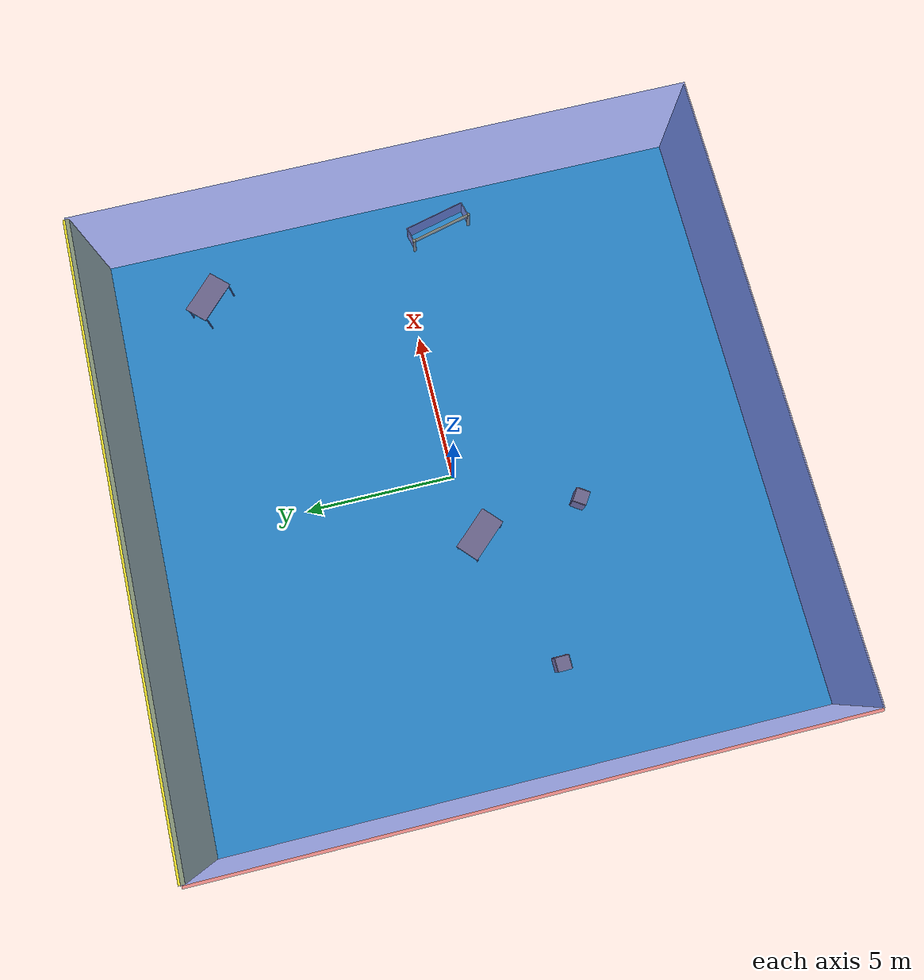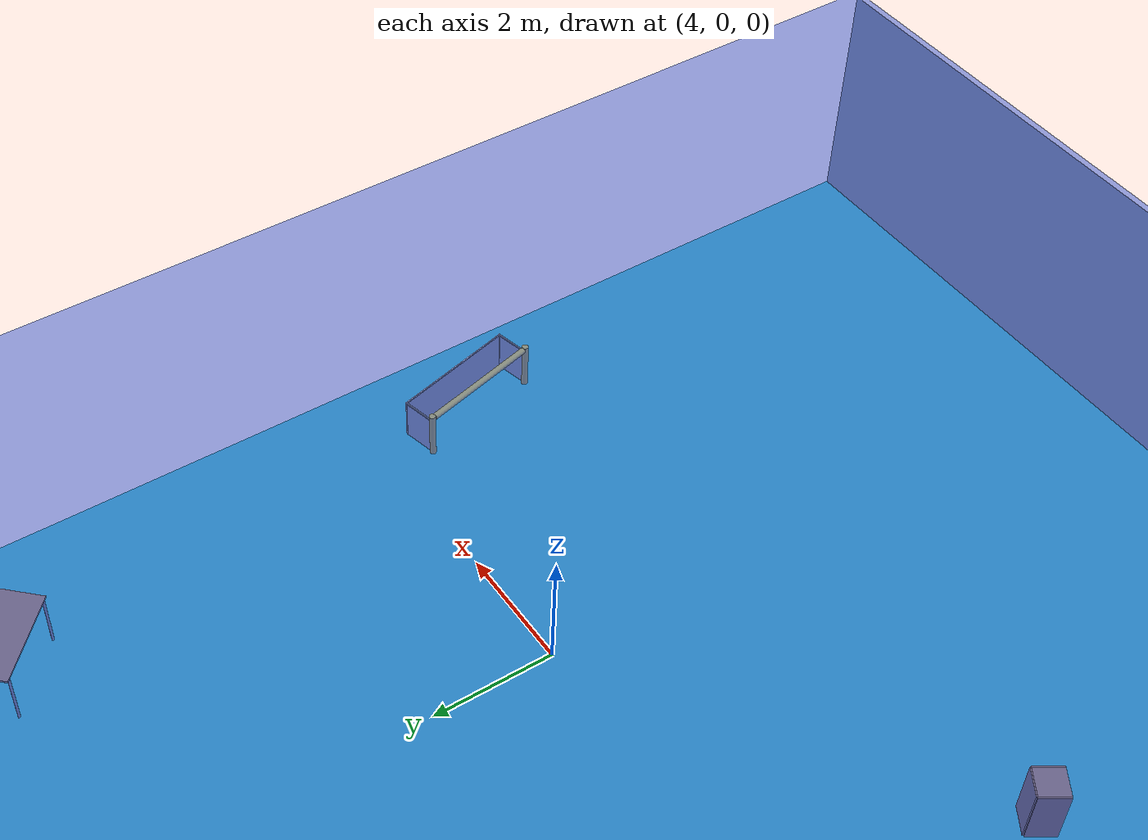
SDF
<sdf version="1.4">
 <world name="default">
  <physics type="ode">
   <max_step_size>0.001</max_step_size>
   <real_time_factor>1</real_time_factor>
   <real_time_update_rate>1000</real_time_update_rate>
   <gravity>0 0 -9.8</gravity>
  </physics>
  <scene><ambient>0.4 0.4 0.4 1</ambient><background>0.7 0.7 0.7 1</background><shadows>1</shadows></scene>
  <model name="Surrounding">
   <static>1</static>
   <link name="Ceiling">
    <collision name="Ceiling_Collision"><geometry><box><size>20 20 0.1</size></box></geometry></collision>
    <visual name="Ceiling_Visual">
     <geometry><box><size>20 20 0.1</size></box></geometry>
     <material>
      <script><uri>file://media/materials/scripts/gazebo.material</uri><name>Gazebo/BlueTransparent</name></script>
     </material>
    </visual>
    <pose>0 0 4.05 0 0 0</pose>
   </link>
   <link name="Wall_South">
    <collision name="Wall_South_Collision">
     <geometry><box><size>20 0 4</size></box></geometry>
     <pose>0 0 2 0 -0 0</pose>
    </collision>
    <visual name="Wall_South_Visual">
     <pose>0 0 2 0 -0 0</pose>
     <geometry><box><size>20 0 4</size></box></geometry>
     <material>
      <script><uri>file://media/materials/scripts/gazebo.material</uri><name>Gazebo/PioneerBody</name></script>
     </material>
    </visual>
    <velocity_decay><linear>0</linear><angular>0</angular></velocity_decay>
    <pose>0 -10 0 0 -0 0</pose>
   </link>
   <link name="Wall_East">
    <collision name="Wall_21_Collision">
     <geometry><box><size>20 0 4</size></box></geometry>
     <pose>0 0 2 0 -0 0</pose>
    </collision>
    <visual name="Wall_21_Visual">
     <pose>0 0 2 0 -0 0</pose>
     <geometry><box><size>20 0 4</size></box></geometry>
     <material>
      <script><uri>file://media/materials/scripts/gazebo.material</uri><name>Gazebo/BlueTransparent</name></script>
     </material>
    </visual>
    <velocity_decay><linear>0</linear><angular>0</angular></velocity_decay>
    <pose>10 0 0 0 -0 1.5708</pose>
   </link>
   <link name="Wall_North">
    <collision name="Wall_22_Collision">
     <geometry><box><size>20 0.2 4</size></box></geometry>
     <pose>0 0 2 0 -0 0</pose>
    </collision>
    <visual name="Wall_22_Visual">
     <pose>0 0 2 0 -0 0</pose>
     <geometry><box><size>20 0.2 4</size></box></geometry>
     <material>
      <script><uri>file://media/materials/scripts/gazebo.material</uri><name>Gazebo/YellowGlow</name></script>
     </material>
    </visual>
    <velocity_decay><linear>0</linear><angular>0</angular></velocity_decay>
    <pose>0 10 0 0 -0 0</pose>
   </link>
   <link name="Wall_West">
    <collision name="Wall_23_Collision">
     <geometry><box><size>20 0.2 4</size></box></geometry>
     <pose>0 0 2 0 -0 0</pose>
    </collision>
    <visual name="Wall_23_Visual">
     <pose>0 0 2 0 -0 0</pose>
     <geometry><box><size>20 0.2 4</size></box></geometry>
     <material>
      <script><uri>file://media/materials/scripts/gazebo.material</uri><name>Gazebo/RedTransparent</name></script>
     </material>
    </visual>
    <velocity_decay><linear>0</linear><angular>0</angular></velocity_decay>
    <pose>-10 0 0 0 0 -1.5708</pose>
   </link>
   <link name="Ground_link">
    <collision name="collision">
     <pose>0 0 .05 0 -0 0</pose>
     <geometry><box><size>20 20 0.1</size></box></geometry>
    </collision>
    <visual name="visual">
     <pose>0 0 .05 0 -0 0</pose>
     <geometry><box><size>20 20 0.1</size></box></geometry>
     <material>
      <script><uri>file://media/materials/scripts/gazebo.material</uri><name>Gazebo/Turquoise</name></script>
     </material>
    </visual>
   </link>
   <static>1</static>
  </model>
  <spherical_coordinates>
   <surface_model>EARTH_WGS84</surface_model>
   <latitude_deg>0</latitude_deg>
   <longitude_deg>0</longitude_deg>
   <elevation>0</elevation>
   <heading_deg>0</heading_deg>
  </spherical_coordinates>
  <light name="lightball_0" type="diffuse">
   <diffuse>0.8 0.8 0.8 1</diffuse>
   <specular>0.2 0.2 0.2 1</specular>
   <attenuation>
    <range>100</range>
    <constant>0.7</constant>
    <linear>0.01</linear>
    <quadratic>0.001</quadratic>
   </attenuation>
   <direction>-0.5 0.1 -0.9</direction>
   <pose>-5.75666271004 3.98206389139 1.12959277904 0 0 0</pose>
  </light>
  <light name="lightball_1" type="diffuse">
   <diffuse>0.8 0.8 0.8 1</diffuse>
   <specular>0.2 0.2 0.2 1</specular>
   <attenuation>
    <range>100</range>
    <constant>0.7</constant>
    <linear>0.01</linear>
    <quadratic>0.001</quadratic>
   </attenuation>
   <direction>-0.5 0.1 -0.9</direction>
   <pose>-5.14357578965 -4.06947363333 1.62275441082 0 0 0</pose>
  </light>
  <light name="lightball_2" type="diffuse">
   <diffuse>0.8 0.8 0.8 1</diffuse>
   <specular>0.2 0.2 0.2 1</specular>
   <attenuation>
    <range>100</range>
    <constant>0.7</constant>
    <linear>0.01</linear>
    <quadratic>0.001</quadratic>
   </attenuation>
   <direction>-0.5 0.1 -0.9</direction>
   <pose>0.727749837806 -6.46800354845 3.72953771681 0 0 0</pose>
  </light>
  <light name="lightball_3" type="diffuse">
   <diffuse>0.8 0.8 0.8 1</diffuse>
   <specular>0.2 0.2 0.2 1</specular>
   <attenuation>
    <range>100</range>
    <constant>0.7</constant>
    <linear>0.01</linear>
    <quadratic>0.001</quadratic>
   </attenuation>
   <direction>-0.5 0.1 -0.9</direction>
   <pose>6.95230010195 -1.12400179061 1.51552410463 0 0 0</pose>
  </light>
  <light name="lightball_4" type="diffuse">
   <diffuse>0.8 0.8 0.8 1</diffuse>
   <specular>0.2 0.2 0.2 1</specular>
   <attenuation>
    <range>100</range>
    <constant>0.7</constant>
    <linear>0.01</linear>
    <quadratic>0.001</quadratic>
   </attenuation>
   <direction>-0.5 0.1 -0.9</direction>
   <pose>-6.2327383154 -6.56902519566 0.660274070629 0 0 0</pose>
  </light>
  <light name="lightball_5" type="diffuse">
   <diffuse>0.8 0.8 0.8 1</diffuse>
   <specular>0.2 0.2 0.2 1</specular>
   <attenuation>
    <range>100</range>
    <constant>0.7</constant>
    <linear>0.01</linear>
    <quadratic>0.001</quadratic>
   </attenuation>
   <direction>-0.5 0.1 -0.9</direction>
   <pose>-6.9904169353 -7.54662848976 1.01079735316 0 0 0</pose>
  </light>
  <light name="lightball_6" type="diffuse">
   <diffuse>0.8 0.8 0.8 1</diffuse>
   <specular>0.2 0.2 0.2 1</specular>
   <attenuation>
    <range>100</range>
    <constant>0.7</constant>
    <linear>0.01</linear>
    <quadratic>0.001</quadratic>
   </attenuation>
   <direction>-0.5 0.1 -0.9</direction>
   <pose>2.38213560654 0.115791958751 1.61419678796 0 0 0</pose>
  </light>
  <light name="lightball_7" type="diffuse">
   <diffuse>0.8 0.8 0.8 1</diffuse>
   <specular>0.2 0.2 0.2 1</specular>
   <attenuation>
    <range>100</range>
    <constant>0.7</constant>
    <linear>0.01</linear>
    <quadratic>0.001</quadratic>
   </attenuation>
   <direction>-0.5 0.1 -0.9</direction>
   <pose>-6.5949293024 -2.65545735526 1.86221850953 0 0 0</pose>
  </light>
  <light name="lightball_8" type="diffuse">
   <diffuse>0.8 0.8 0.8 1</diffuse>
   <specular>0.2 0.2 0.2 1</specular>
   <attenuation>
    <range>100</range>
    <constant>0.7</constant>
    <linear>0.01</linear>
    <quadratic>0.001</quadratic>
   </attenuation>
   <direction>-0.5 0.1 -0.9</direction>
   <pose>-4.99975642231 8.79363323001 1.85348155677 0 0 0</pose>
  </light>
  <light name="lightball_9" type="diffuse">
   <diffuse>0.8 0.8 0.8 1</diffuse>
   <specular>0.2 0.2 0.2 1</specular>
   <attenuation>
    <range>100</range>
    <constant>0.7</constant>
    <linear>0.01</linear>
    <quadratic>0.001</quadratic>
   </attenuation>
   <direction>-0.5 0.1 -0.9</direction>
   <pose>8.19601766171 -5.5367632859 2.57370923835 0 0 0</pose>
  </light>
  <light name="lightball_10" type="diffuse">
   <diffuse>0.8 0.8 0.8 1</diffuse>
   <specular>0.2 0.2 0.2 1</specular>
   <attenuation>
    <range>100</range>
    <constant>0.7</constant>
    <linear>0.01</linear>
    <quadratic>0.001</quadratic>
   </attenuation>
   <direction>-0.5 0.1 -0.9</direction>
   <pose>9.35812901137 3.43410909366 2.05290175519 0 0 0</pose>
  </light>
  <include><uri>model://cabinet</uri><pose>-6.75603339461 -1.9027599189 0 0 0 0.0200973952508</pose></include>
  <include><uri>model://cabinet</uri><pose>-1.77257141417 -3.83470855931 0 0 0 0.988298251459</pose></include>
  <include><uri>model://table</uri><pose>-2.19825084945 -0.338416039671 0 0 0 2.31726927834</pose></include>
  <include>
   <uri>model://robocup_3Dsim_goal</uri>
   <pose>8.43770163343 -1.60983588453 0 0 0 0.242294740899</pose>
  </include>
  <include><uri>model://table</uri><pose>7.77880517141 6.64540854558 0 0 0 2.37714951332</pose></include>
 </world>
</sdf>

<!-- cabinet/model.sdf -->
<sdf version="1.5">
  <model name="cabinet">
    <static>true</static>
    <link name="cabinet_bottom_plate">
      <inertial>
        <pose>0 0 -1 0 0 0</pose>
        <inertia>
          <ixx>2.050000</ixx>
          <ixy>0</ixy>
          <ixz>0</ixz>
          <iyy>2.050000</iyy>
          <iyz>0</iyz>
          <izz>2.050000</izz>
        </inertia>
        <mass>25.000000</mass>
      </inertial>
      <collision name="cabinet_bottom_plate_geom">
        <pose>0 0 0.010000 0 0 0</pose>
        <geometry>
          <box>
            <size>0.450000 0.450000 0.020000</size>
          </box>
        </geometry>
      </collision>
      <visual name="cabinet_bottom_plate_geom_visual">
        <pose>0 0 0.010000 0 0 0</pose>
        <geometry>
          <box>
            <size>0.450000 0.450000 0.020000</size>
          </box>
        </geometry>
        <material>
          <script>
            <uri>model://media/materials/scripts/gazebo.material</uri>
            <name>Gazebo/Wood</name>
          </script>
        </material>
      </visual>
      <collision name="cabinet_bottom_plate_geom_cabinet_back_plate">
        <pose>0.235000 0 0.510000 0 0 0</pose>
        <geometry>
          <box>
            <size>0.020000 0.450000 1.020000</size>
          </box>
        </geometry>
      </collision>
      <visual name="cabinet_bottom_plate_geom_cabinet_back_plate_visual">
        <pose>0.235000 0 0.510000 0 0 0</pose>
        <geometry>
          <box>
            <size>0.020000 0.450000 1.020000</size>
          </box>
        </geometry>
        <material>
          <script>
            <uri>model://media/materials/scripts/gazebo.material</uri>
            <name>Gazebo/Wood</name>
          </script>
        </material>
      </visual>
      <collision name="cabinet_bottom_plate_geom_cabinet_left_plate">
        <pose>0 0.235000 0.510000 0 0 0</pose>
        <geometry>
          <box>
            <size>0.450000 0.020000 1.020000</size>
          </box>
        </geometry>
      </collision>
      <visual name="cabinet_bottom_plate_geom_cabinet_left_plate_visual">
        <pose>0 0.235000 0.510000 0 0 0</pose>
        <geometry>
          <box>
            <size>0.450000 0.020000 1.020000</size>
          </box>
        </geometry>
        <material>
          <script>
            <uri>model://media/materials/scripts/gazebo.material</uri>
            <name>Gazebo/Wood</name>
          </script>
        </material>
      </visual>
      <collision name="cabinet_bottom_plate_geom_cabinet_middle_plate">
        <pose>0 0 0.510000 0 0 0</pose>
        <geometry>
          <box>
            <size>0.450000 0.450000 0.020000</size>
          </box>
        </geometry>
      </collision>
      <visual name="cabinet_bottom_plate_geom_cabinet_middle_plate_visual">
        <pose>0 0 0.510000 0 0 0</pose>
        <geometry>
          <box>
            <size>0.450000 0.450000 0.020000</size>
          </box>
        </geometry>
        <material>
          <script>
            <uri>model://media/materials/scripts/gazebo.material</uri>
            <name>Gazebo/Wood</name>
          </script>
        </material>
      </visual>
      <collision name="cabinet_bottom_plate_geom_cabinet_right_plate">
        <pose>0 -0.235000 0.510000 0 0 0</pose>
        <geometry>
          <box>
            <size>0.450000 0.020000 1.020000</size>
          </box>
        </geometry>
      </collision>
      <visual name="cabinet_bottom_plate_geom_cabinet_right_plate_visual">
        <pose>0 -0.235000 0.510000 0 0 0</pose>
        <geometry>
          <box>
            <size>0.450000 0.020000 1.020000</size>
          </box>
        </geometry>
        <material>
          <script>
            <uri>model://media/materials/scripts/gazebo.material</uri>
            <name>Gazebo/Wood</name>
          </script>
        </material>
      </visual>
      <collision name="cabinet_bottom_plate_geom_cabinet_top_plate">
        <pose>0 0 1.010000 0 0 0</pose>
        <geometry>
          <box>
            <size>0.450000 0.450000 0.020000</size>
          </box>
        </geometry>
      </collision>
      <visual name="cabinet_bottom_plate_geom_cabinet_top_plate_visual">
        <pose>0 0 1.010000 0 0 0</pose>
        <geometry>
          <box>
            <size>0.450000 0.450000 0.020000</size>
          </box>
        </geometry>
        <material>
          <script>
            <uri>model://media/materials/scripts/gazebo.material</uri>
            <name>Gazebo/Wood</name>
          </script>
        </material>
      </visual>
    </link>
  </model>
</sdf>

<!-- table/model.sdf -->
<sdf version="1.5">
  <model name="table">
    <static>true</static>
    <link name="link">
      <collision name="surface">
        <pose>0 0 1.0 0 0 0</pose>
        <geometry>
          <box>
            <size>1.5 0.8 0.03</size>
          </box>
        </geometry>
        <surface>
          <friction>
            <ode>
              <mu>0.6</mu>
              <mu2>0.6</mu2>
            </ode>
          </friction>
        </surface>
      </collision>
      <visual name="visual1">
        <pose>0 0 1.0 0 0 0</pose>
        <geometry>
          <box>
            <size>1.5 0.8 0.03</size>
          </box>
        </geometry>
        <material>
          <script>
            <uri>model://media/materials/scripts/gazebo.material</uri>
            <name>Gazebo/Wood</name>
          </script>
        </material>
      </visual>
      <collision name="front_left_leg">
        <pose>0.68 0.38 0.5 0 0 0</pose>
        <geometry>
          <cylinder>
            <radius>0.02</radius>
            <length>1.0</length>
          </cylinder>
        </geometry>
      </collision>
      <visual name="front_left_leg">
        <pose>0.68 0.38 0.5 0 0 0</pose>
        <geometry>
          <cylinder>
            <radius>0.02</radius>
            <length>1.0</length>
          </cylinder>
        </geometry>
        <material>
          <script>
            <uri>model://media/materials/scripts/gazebo.material</uri>
            <name>Gazebo/Grey</name>
          </script>
        </material>
      </visual>
      <collision name="front_right_leg">
        <pose>0.68 -0.38 0.5 0 0 0</pose>
        <geometry>
          <cylinder>
            <radius>0.02</radius>
            <length>1.0</length>
          </cylinder>
        </geometry>
      </collision>
      <visual name="front_right_leg">
        <pose>0.68 -0.38 0.5 0 0 0</pose>
        <geometry>
          <cylinder>
            <radius>0.02</radius>
            <length>1.0</length>
          </cylinder>
        </geometry>
        <material>
          <script>
            <uri>model://media/materials/scripts/gazebo.material</uri>
            <name>Gazebo/Grey</name>
          </script>
        </material>
      </visual>
      <collision name="back_right_leg">
        <pose>-0.68 -0.38 0.5 0 0 0</pose>
        <geometry>
          <cylinder>
            <radius>0.02</radius>
            <length>1.0</length>
          </cylinder>
        </geometry>
      </collision>
      <visual name="back_right_leg">
        <pose>-0.68 -0.38 0.5 0 0 0</pose>
        <geometry>
          <cylinder>
            <radius>0.02</radius>
            <length>1.0</length>
          </cylinder>
        </geometry>
        <material>
          <script>
            <uri>model://media/materials/scripts/gazebo.material</uri>
            <name>Gazebo/Grey</name>
          </script>
        </material>
      </visual>
      <collision name="back_left_leg">
        <pose>-0.68 0.38 0.5 0 0 0</pose>
        <geometry>
          <cylinder>
            <radius>0.02</radius>
            <length>1.0</length>
          </cylinder>
        </geometry>
      </collision>
      <visual name="back_left_leg">
        <pose>-0.68 0.38 0.5 0 0 0</pose>
        <geometry>
          <cylinder>
            <radius>0.02</radius>
            <length>1.0</length>
          </cylinder>
        </geometry>
        <material>
          <script>
            <uri>model://media/materials/scripts/gazebo.material</uri>
            <name>Gazebo/Grey</name>
          </script>
        </material>
      </visual>
    </link>
  </model>
</sdf>

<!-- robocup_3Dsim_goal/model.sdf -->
<sdf version="1.5">
  <model name="robocup_3d_goal">
    <static>true</static>
    <link name="left_post">
      <pose>0 1.05 0.45 0 0 0</pose>
      <collision name="collision">
        <geometry>
          <cylinder>
            <radius>0.05</radius>
            <length>0.9</length>
          </cylinder>
        </geometry>
      </collision>
      <visual name="visual">
        <geometry>
          <cylinder>
            <radius>0.05</radius>
            <length>0.9</length>
          </cylinder>
        </geometry>
        <material>
          <script>
            <uri>file://media/materials/scripts/gazebo.material</uri>
            <name>Gazebo/ZincYellow</name>
          </script>
        </material>
      </visual>
    </link>
    <link name="left_support_horiz_lower">
      <pose>0.30 1.05 0.01 0 0 0</pose>
      <collision name="collision">
        <geometry>
          <box>
            <size>0.50 0.02 0.02</size>
          </box>
        </geometry>
      </collision>
      <visual name="visual">
        <geometry>
          <box>
            <size>0.50 0.02 0.02</size>
          </box>
        </geometry>
        <material>
          <script>
            <uri>file://media/materials/scripts/gazebo.material</uri>
            <name>Gazebo/White</name>
          </script>
        </material>
      </visual>
    </link>
    <link name="left_support_horiz_upper">
      <pose>0.30 1.05 0.79 0 0 0</pose>
      <collision name="collision">
        <geometry>
          <box>
            <size>0.50 0.02 0.02</size>
          </box>
        </geometry>
      </collision>
      <visual name="visual">
        <geometry>
          <box>
            <size>0.50 0.02 0.02</size>
          </box>
        </geometry>
        <material>
          <script>
            <uri>file://media/materials/scripts/gazebo.material</uri>
            <name>Gazebo/White</name>
          </script>
        </material>
      </visual>
    </link>
    <link name="left_support_vertical">
      <pose>0.56 1.05 0.4 0 1.5708 0</pose>
      <collision name="collision">
        <geometry>
          <box>
            <size>0.80 0.02 0.02</size>
          </box>
        </geometry>
      </collision>
      <visual name="visual">
        <geometry>
          <box>
            <size>0.80 0.02 0.02</size>
          </box>
        </geometry>
        <material>
          <script>
            <uri>file://media/materials/scripts/gazebo.material</uri>
            <name>Gazebo/White</name>
          </script>
        </material>
      </visual>
    </link>
    <link name="right_support_horiz_lower">
      <pose>0.30 -1.05 0.01 0 0 0</pose>
      <collision name="collision">
        <geometry>
          <box>
            <size>0.50 0.02 0.02</size>
          </box>
        </geometry>
      </collision>
      <visual name="visual">
        <geometry>
          <box>
            <size>0.50 0.02 0.02</size>
          </box>
        </geometry>
        <material>
          <script>
            <uri>file://media/materials/scripts/gazebo.material</uri>
            <name>Gazebo/White</name>
          </script>
        </material>
      </visual>
    </link>
    <link name="right_support_horiz_upper">
      <pose>0.30 -1.05 0.79 0 0 0</pose>
      <collision name="collision">
        <geometry>
          <box>
            <size>0.50 0.02 0.02</size>
          </box>
        </geometry>
      </collision>
      <visual name="visual">
        <geometry>
          <box>
            <size>0.50 0.02 0.02</size>
          </box>
        </geometry>
        <material>
          <script>
            <uri>file://media/materials/scripts/gazebo.material</uri>
            <name>Gazebo/White</name>
          </script>
        </material>
      </visual>
    </link>
    <link name="right_support_vertical">
      <pose>0.56 -1.05 0.4 0 1.5708 0</pose>
      <collision name="collision">
        <geometry>
          <box>
            <size>0.80 0.02 0.02</size>
          </box>
        </geometry>
      </collision>
      <visual name="visual">
        <geometry>
          <box>
            <size>0.80 0.02 0.02</size>
          </box>
        </geometry>
        <material>
          <script>
            <uri>file://media/materials/scripts/gazebo.material</uri>
            <name>Gazebo/White</name>
          </script>
        </material>
      </visual>
    </link>
    <link name="center_support_horiz_lower">
      <pose>0.56 0 0.01 0 1.5708 0</pose>
      <collision name="collision">
        <geometry>
          <box>
            <size>0.02 2.08 0.02</size>
          </box>
        </geometry>
      </collision>
      <visual name="visual">
        <geometry>
          <box>
            <size>0.02 2.08 0.02</size>
          </box>
        </geometry>
        <material>
          <script>
            <uri>file://media/materials/scripts/gazebo.material</uri>
            <name>Gazebo/White</name>
          </script>
        </material>
      </visual>
    </link>
    <link name="center_support_horiz_upper">
      <pose>0.56 0 0.79 0 1.5708 0</pose>
      <collision name="collision">
        <geometry>
          <box>
            <size>0.02 2.08 0.02</size>
          </box>
        </geometry>
      </collision>
      <visual name="visual">
        <geometry>
          <box>
            <size>0.02 2.08 0.02</size>
          </box>
        </geometry>
        <material>
          <script>
            <uri>file://media/materials/scripts/gazebo.material</uri>
            <name>Gazebo/White</name>
          </script>
        </material>
      </visual>
    </link>
    <link name="right_post">
      <pose>0 -1.05 0.45 0 0 0</pose>
      <collision name="collision">
        <geometry>
          <cylinder>
            <radius>0.05</radius>
            <length>0.9</length>
          </cylinder>
        </geometry>
      </collision>
      <visual name="visual">
        <geometry>
          <cylinder>
            <radius>0.05</radius>
            <length>0.9</length>
          </cylinder>
        </geometry>
        <material>
          <script>
            <uri>file://media/materials/scripts/gazebo.material</uri>
            <name>Gazebo/ZincYellow</name>
          </script>
        </material>
      </visual>
    </link>
    <link name="crossbar">
      <pose>0 0 0.85 1.57 1.57 0</pose>
      <collision name="collision">
        <geometry>
          <cylinder>
            <radius>0.05</radius>
            <length>2.0</length>
          </cylinder>
        </geometry>
      </collision>
      <visual name="visual">
        <geometry>
          <cylinder>
            <radius>0.05</radius>
            <length>2.0</length>
          </cylinder>
        </geometry>
        <material>
          <script>
            <uri>file://media/materials/scripts/gazebo.material</uri>
            <name>Gazebo/ZincYellow</name>
          </script>
        </material>
      </visual>
    </link>
    <link name="center_net">
      <pose>0.56 0 0.40 0 0 0</pose>
      <collision name="collision">
        <geometry>
          <box>
            <size>0.01 2.1 0.80</size>
          </box>
        </geometry>
      </collision>
      <visual name="visual">
        <geometry>
          <box>
            <size>0.01 2.1 0.80</size>
          </box>
        </geometry>
        <material>
          <script>
            <uri>model://../model_source/models/robocup09_spl_field/materials/scripts/</uri>
            <uri>model://../model_source/models/robocup09_spl_field/materials/textures/</uri>
            <name>RoboCup/Net</name>
          </script>
        </material>
      </visual>
    </link>
    <link name="left_net">
      <pose>0.30 1.05 0.40 0 0 0</pose>
      <collision name="collision">
        <geometry>
          <box>
            <size>0.50 0.01 0.76</size>
          </box>
        </geometry>
      </collision>
      <visual name="visual">
        <geometry>
          <box>
            <size>0.50 0.01 0.76</size>
          </box>
        </geometry>
        <material>
          <script>
            <uri>model://../model_source/models/robocup09_spl_field/materials/scripts/</uri>
            <uri>model://../model_source/models/robocup09_spl_field/materials/textures/</uri>
            <name>RoboCup/Net</name>
          </script>
        </material>
      </visual>
    </link>
    <link name="right_net">
      <pose>0.30 -1.05 0.40 0 0 0</pose>
      <collision name="collision">
        <geometry>
          <box>
            <size>0.50 0.01 0.76</size>
          </box>
        </geometry>
      </collision>
      <visual name="visual">
        <geometry>
          <box>
            <size>0.50 0.01 0.76</size>
          </box>
        </geometry>
        <material>
          <script>
            <uri>model://../model_source/models/robocup09_spl_field/materials/scripts/</uri>
            <uri>model://../model_source/models/robocup09_spl_field/materials/textures/</uri>
            <name>RoboCup/Net</name>
          </script>
        </material>
      </visual>
    </link>
  </model>
</sdf>
